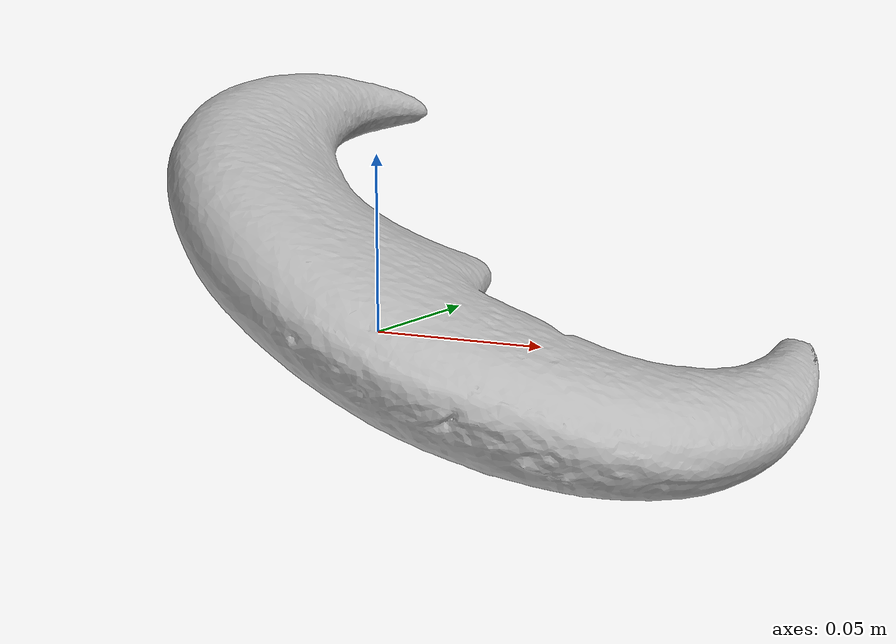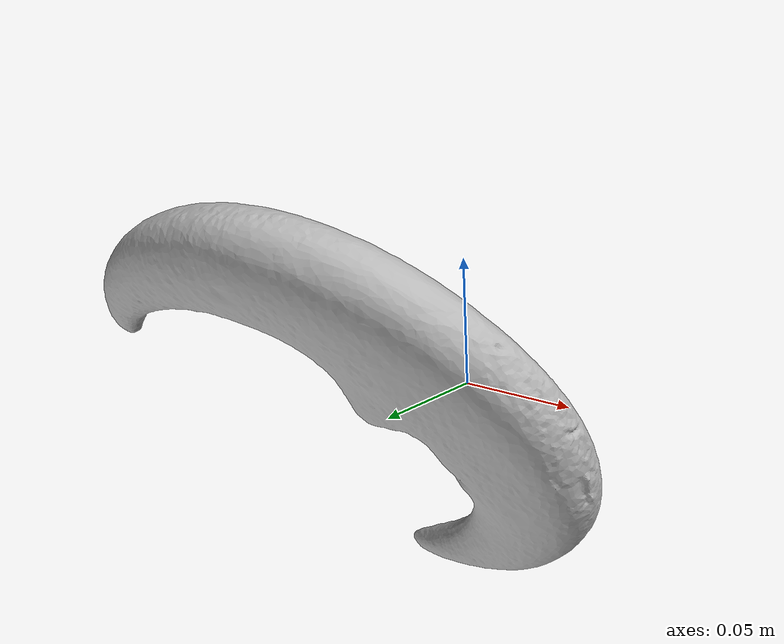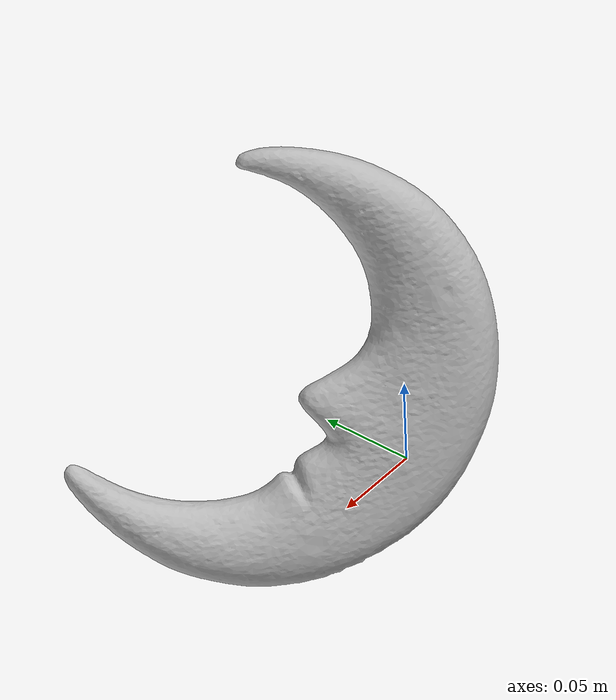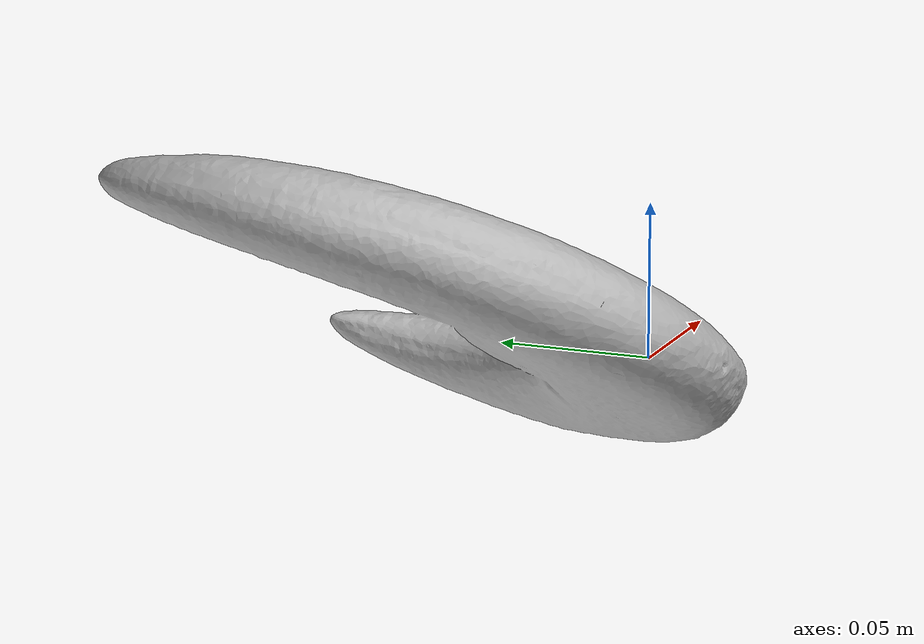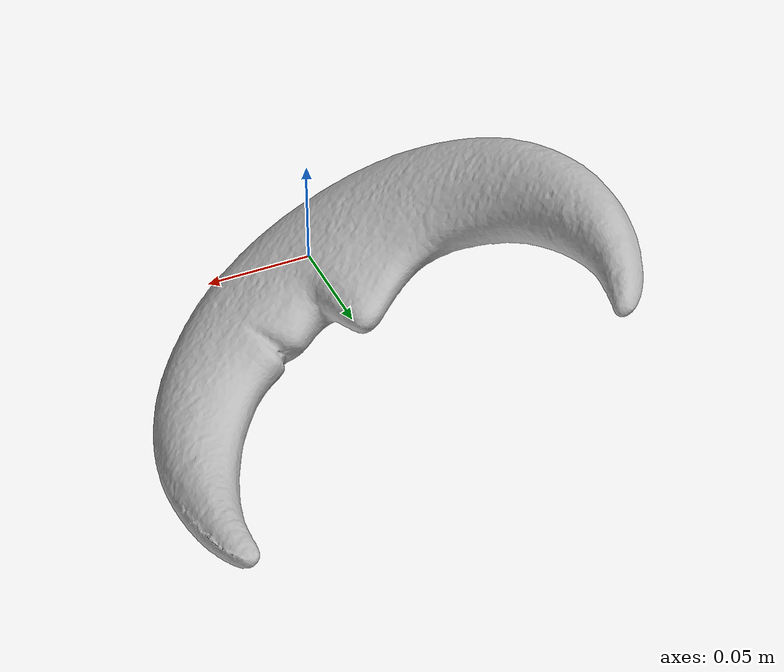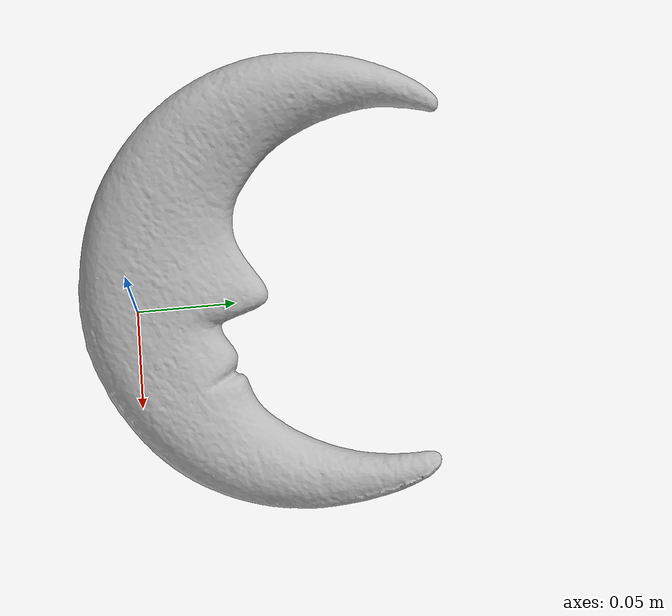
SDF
<?xml version='1.0'?>
<sdf version="1.4">
  <model name="Moon">
    <static>false</static>
    <link name="link">
      <inertial>
        <pose>-0.0038985028775875602 0.06061292632284993 0.010845329626040354 -0.18544882382415329 1.071200316341737 2.8616546261251887</pose>
        <mass>0.09289325944474491</mass>
        <inertia>
          <ixx>0.00048060267295451503</ixx>
          <ixy>1.9161966392047908e-20</ixy>
          <ixz>-1.1328450549174592e-19</ixz>
          <iyy>0.0003129324071175729</iyy>
          <iyz>6.26945007661091e-20</iyz>
          <izz>0.000181213467615386</izz>
        </inertia>
      </inertial>
      <collision name="collision">
        <geometry>
          <mesh>
            <!-- Use a downsampled mesh for collisions -->
            <uri>model:///Moon/Moon_250_collision.obj</uri>
	        </mesh>
        </geometry>
        <surface>
      </surface>
      </collision>
      <visual name="visual">
        <geometry>
          <mesh>
            <uri>model:///Moon/Moon_25k_tex.obj</uri>
	        </mesh>
        </geometry>
        <material>
          <script>
            <uri>model:///Moon/Moon.material</uri>
            <name>Moon</name>
          </script>
        </material>
      </visual>
    </link>
  </model>
</sdf>
